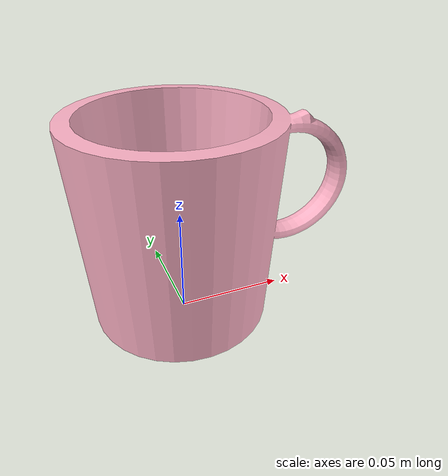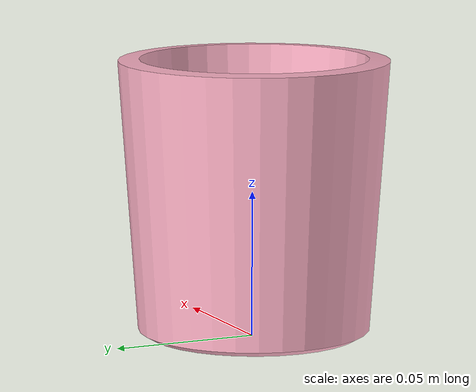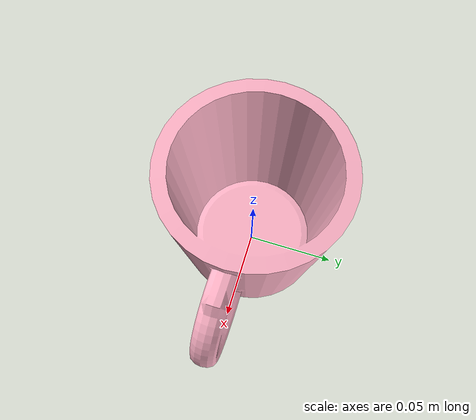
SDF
<?xml version="1.0" ?>
<sdf version='1.5'>
  <model name="custom_mug_pink_01">
      <link name='link'>
        <inertial>
        <pose>0 0 0 0 0 0</pose>
          <mass>0.3</mass>
          <inertia>
            <ixx>3.7</ixx>
            <ixy>0.0</ixy>
            <ixz>0.0</ixz>
            <iyy>3.7</iyy>
            <iyz>0.0</iyz>
            <izz>2.4</izz>
          </inertia>
        </inertial>
        <collision name='collision'>
        <pose>0 0 0 0 0 0</pose>
          <geometry>
            <mesh>
              <uri>model://custom_mug_pink_01/meshes/Mug.dae</uri>
              <scale>0.14 0.14 0.14</scale>
              <!-- dimension: dx 9.411cm dy 7.244cm dz 7.331cm -->
            </mesh>
          </geometry>
          <surface>
            <friction>
              <ode>
                <mu>10.0</mu>
                <mu2>10.0</mu2>
              </ode>
            </friction>
          </surface>
        </collision>
        <visual name='visual'>
          <geometry>
            <mesh>
              <uri>model://custom_mug_pink_01/meshes/Mug.dae</uri>
              <scale>0.14 0.14 0.14</scale>
            </mesh>
          </geometry>
        </visual>
        <gravity>1</gravity>
      </link>
  </model>
</sdf>
